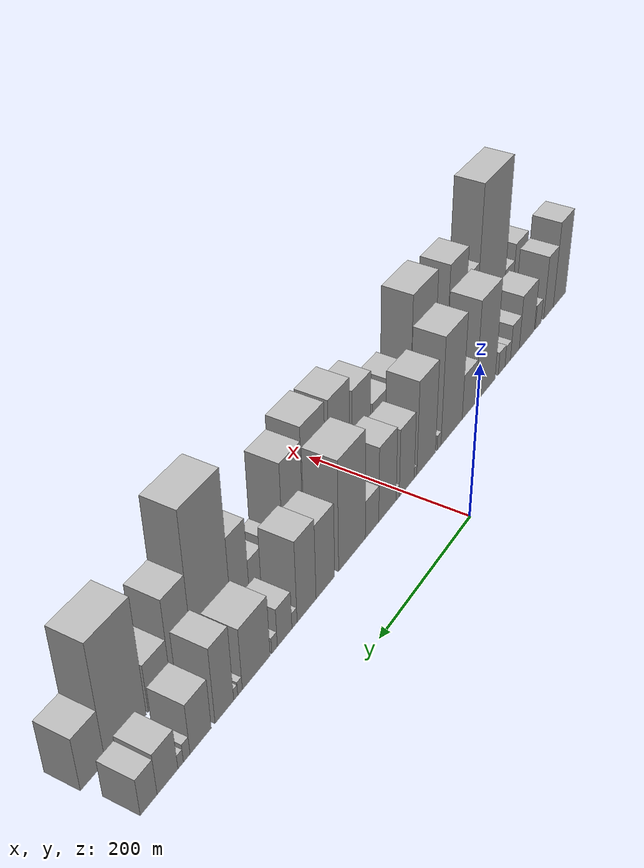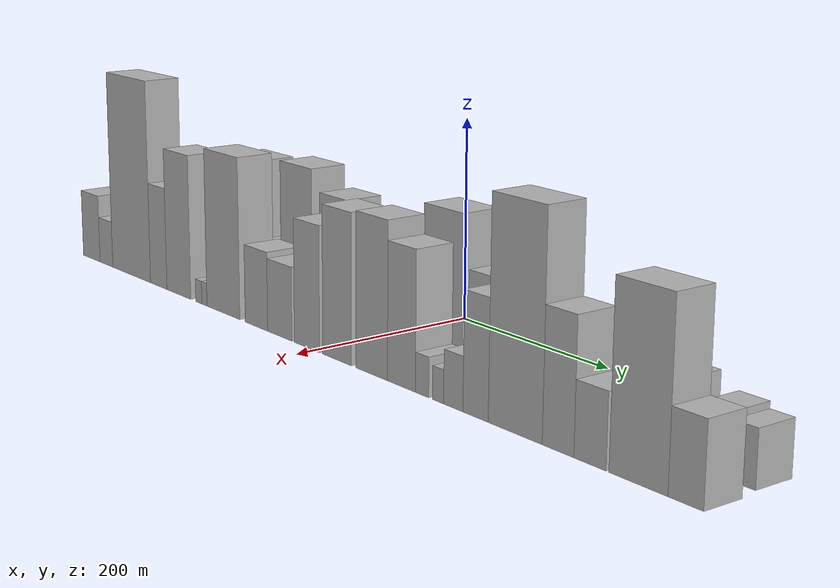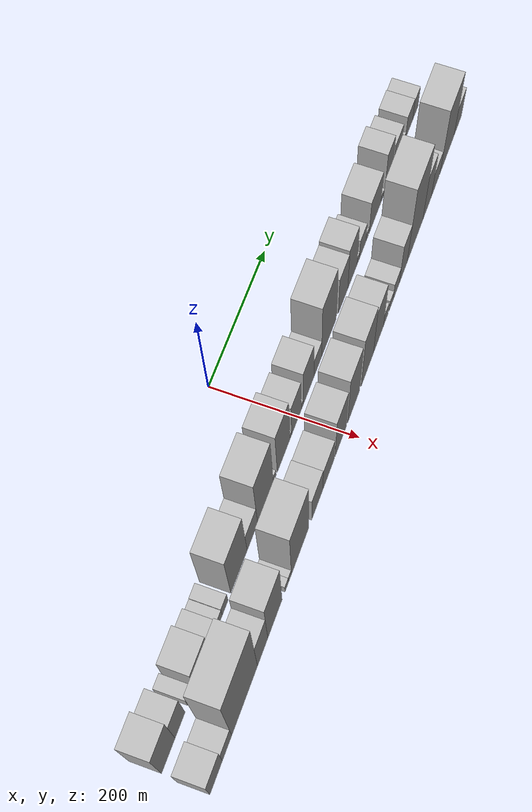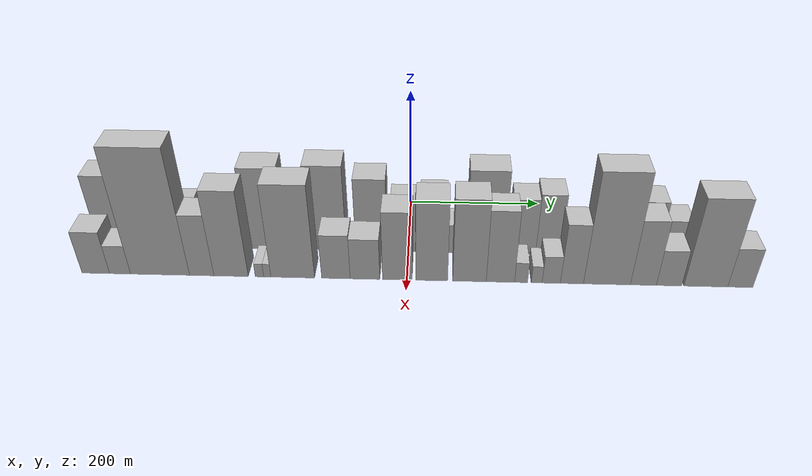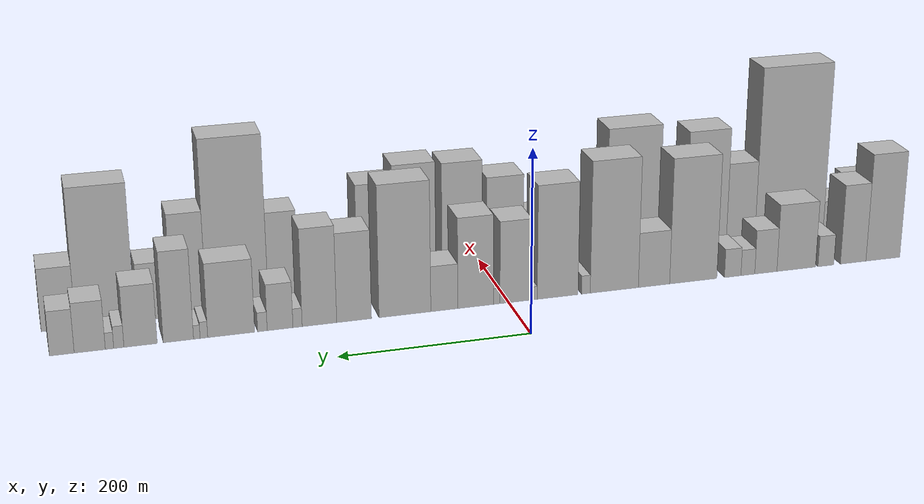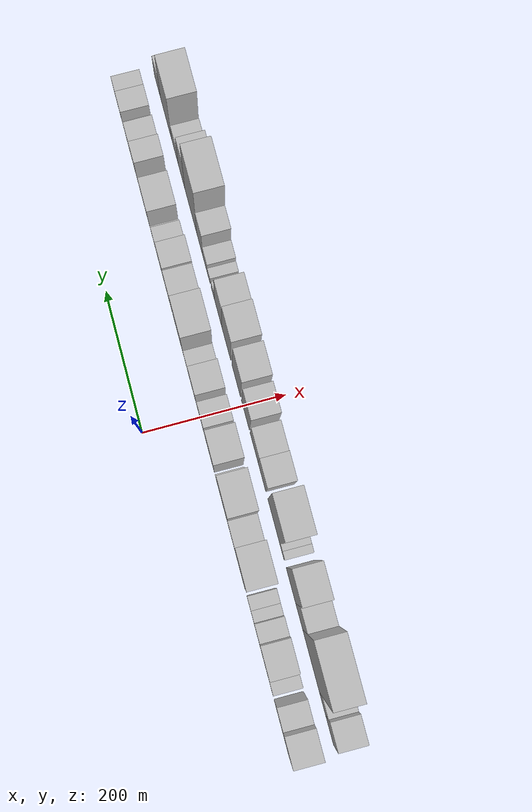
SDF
<sdf version="1.6">
 <world name="default">
  <scene>
   <sky><clouds><speed>12</speed></clouds></sky>
   <ambient>0.4 0.4 0.4 1</ambient>
   <background>0.7 0.7 0.7 1</background>
   <shadows>1</shadows>
  </scene>
  <gravity>0 0 -9.8066</gravity>
  <magnetic_field>6e-06 2.3e-05 -4.2e-05</magnetic_field>
  <physics default="0" name="default_physics" type="ode">
   <ode>
    <solver>
     <type>quick</type>
     <iters>10</iters>
     <sor>1.0</sor>
     <use_dynamic_moi_rescaling>0</use_dynamic_moi_rescaling>
    </solver>
    <constraints>
     <cfm>0</cfm>
     <erp>0.2</erp>
     <contact_max_correcting_vel>100</contact_max_correcting_vel>
     <contact_surface_layer>0.001</contact_surface_layer>
    </constraints>
   </ode>
   <max_step_size>0.004</max_step_size>
   <real_time_factor>1</real_time_factor>
   <real_time_update_rate>250</real_time_update_rate>
  </physics>
  <light name="sun" type="directional">
   <pose>0 0 10 0 0 0</pose>
   <diffuse>0.8 0.8 0.8 1</diffuse>
   <specular>0.2 0.2 0.2 1</specular>
   <attenuation>
    <range>1000</range>
    <constant>0.9</constant>
    <linear>0.01</linear>
    <quadratic>0.001</quadratic>
   </attenuation>
   <direction>-0.5 0.1 -0.9</direction>
  </light>
  <model name="building_1">
   <static>1</static>
   <pose>100.0000 -436.1519 0 0.000000 0.000000 0.000000</pose>
   <link name="link">
    <pose>0 0 63.00 0 0 0</pose>
    <collision name="collision"><geometry><box><size>40.0000 41.6962 126.0000</size></box></geometry></collision>
    <visual name="visual">
     <cast_shadows>0</cast_shadows>
     <geometry><box><size>40.0000 41.6962 126.0000</size></box></geometry>
     <material>
      <script>
       <uri>model://HANNAS_wall/materials/scripts</uri>
       <uri>model://HANNAS_wall/materials/textures</uri>
       <name>vrc/HANNAS_wall</name>
      </script>
     </material>
    </visual>
   </link>
  </model>
  <model name="building_2">
   <static>1</static>
   <pose>100.0000 -399.7004 0 0.000000 0.000000 0.000000</pose>
   <link name="link">
    <pose>0 0 46.50 0 0 0</pose>
    <collision name="collision"><geometry><box><size>40.0000 31.2068 93.0000</size></box></geometry></collision>
    <visual name="visual">
     <cast_shadows>0</cast_shadows>
     <geometry><box><size>40.0000 31.2068 93.0000</size></box></geometry>
     <material>
      <script>
       <uri>model://HANNAS_wall/materials/scripts</uri>
       <uri>model://HANNAS_wall/materials/textures</uri>
       <name>vrc/HANNAS_wall</name>
      </script>
     </material>
    </visual>
   </link>
  </model>
  <model name="building_3">
   <static>1</static>
   <pose>100.0000 -366.5064 0 0.000000 0.000000 0.000000</pose>
   <link name="link">
    <pose>0 0 18.00 0 0 0</pose>
    <collision name="collision"><geometry><box><size>40.0000 19.1812 36.0000</size></box></geometry></collision>
    <visual name="visual">
     <cast_shadows>0</cast_shadows>
     <geometry><box><size>40.0000 19.1812 36.0000</size></box></geometry>
     <material>
      <script>
       <uri>model://HANNAS_wall/materials/scripts</uri>
       <uri>model://HANNAS_wall/materials/textures</uri>
       <name>vrc/HANNAS_wall</name>
      </script>
     </material>
    </visual>
   </link>
  </model>
  <model name="building_4">
   <static>1</static>
   <pose>100.0000 -330.7032 0 0.000000 0.000000 0.000000</pose>
   <link name="link">
    <pose>0 0 39.00 0 0 0</pose>
    <collision name="collision"><geometry><box><size>40.0000 46.4252 78.0000</size></box></geometry></collision>
    <visual name="visual">
     <cast_shadows>0</cast_shadows>
     <geometry><box><size>40.0000 46.4252 78.0000</size></box></geometry>
     <material>
      <script>
       <uri>model://HANNAS_wall/materials/scripts</uri>
       <uri>model://HANNAS_wall/materials/textures</uri>
       <name>vrc/HANNAS_wall</name>
      </script>
     </material>
    </visual>
   </link>
  </model>
  <model name="building_5">
   <static>1</static>
   <pose>100.0000 -294.3100 0 0.000000 0.000000 0.000000</pose>
   <link name="link">
    <pose>0 0 25.50 0 0 0</pose>
    <collision name="collision"><geometry><box><size>40.0000 26.3612 51.0000</size></box></geometry></collision>
    <visual name="visual">
     <cast_shadows>0</cast_shadows>
     <geometry><box><size>40.0000 26.3612 51.0000</size></box></geometry>
     <material>
      <script>
       <uri>model://HANNAS_wall/materials/scripts</uri>
       <uri>model://HANNAS_wall/materials/textures</uri>
       <name>vrc/HANNAS_wall</name>
      </script>
     </material>
    </visual>
   </link>
  </model>
  <model name="building_6">
   <static>1</static>
   <pose>100.0000 -272.9667 0 0.000000 0.000000 0.000000</pose>
   <link name="link">
    <pose>0 0 15.00 0 0 0</pose>
    <collision name="collision"><geometry><box><size>40.0000 16.3254 30.0000</size></box></geometry></collision>
    <visual name="visual">
     <cast_shadows>0</cast_shadows>
     <geometry><box><size>40.0000 16.3254 30.0000</size></box></geometry>
     <material>
      <script>
       <uri>model://HANNAS_wall/materials/scripts</uri>
       <uri>model://HANNAS_wall/materials/textures</uri>
       <name>vrc/HANNAS_wall</name>
      </script>
     </material>
    </visual>
   </link>
  </model>
  <model name="building_7">
   <static>1</static>
   <pose>100.0000 -255.0828 0 0.000000 0.000000 0.000000</pose>
   <link name="link">
    <pose>0 0 16.50 0 0 0</pose>
    <collision name="collision"><geometry><box><size>40.0000 19.4425 33.0000</size></box></geometry></collision>
    <visual name="visual">
     <cast_shadows>0</cast_shadows>
     <geometry><box><size>40.0000 19.4425 33.0000</size></box></geometry>
     <material>
      <script>
       <uri>model://HANNAS_wall/materials/scripts</uri>
       <uri>model://HANNAS_wall/materials/textures</uri>
       <name>vrc/HANNAS_wall</name>
      </script>
     </material>
    </visual>
   </link>
  </model>
  <model name="building_8">
   <static>1</static>
   <pose>100.0000 -208.8802 0 0.000000 0.000000 0.000000</pose>
   <link name="link">
    <pose>0 0 72.00 0 0 0</pose>
    <collision name="collision"><geometry><box><size>40.0000 54.9626 144.0000</size></box></geometry></collision>
    <visual name="visual">
     <cast_shadows>0</cast_shadows>
     <geometry><box><size>40.0000 54.9626 144.0000</size></box></geometry>
     <material>
      <script>
       <uri>model://HANNAS_wall/materials/scripts</uri>
       <uri>model://HANNAS_wall/materials/textures</uri>
       <name>vrc/HANNAS_wall</name>
      </script>
     </material>
    </visual>
   </link>
  </model>
  <model name="building_9">
   <static>1</static>
   <pose>100.0000 -163.3963 0 0.000000 0.000000 0.000000</pose>
   <link name="link">
    <pose>0 0 31.50 0 0 0</pose>
    <collision name="collision"><geometry><box><size>40.0000 36.0052 63.0000</size></box></geometry></collision>
    <visual name="visual">
     <cast_shadows>0</cast_shadows>
     <geometry><box><size>40.0000 36.0052 63.0000</size></box></geometry>
     <material>
      <script>
       <uri>model://HANNAS_wall/materials/scripts</uri>
       <uri>model://HANNAS_wall/materials/textures</uri>
       <name>vrc/HANNAS_wall</name>
      </script>
     </material>
    </visual>
   </link>
  </model>
  <model name="building_10">
   <static>1</static>
   <pose>100.0000 -118.0097 0 0.000000 0.000000 0.000000</pose>
   <link name="link">
    <pose>0 0 75.00 0 0 0</pose>
    <collision name="collision"><geometry><box><size>40.0000 54.7680 150.0000</size></box></geometry></collision>
    <visual name="visual">
     <cast_shadows>0</cast_shadows>
     <geometry><box><size>40.0000 54.7680 150.0000</size></box></geometry>
     <material>
      <script>
       <uri>model://HANNAS_wall/materials/scripts</uri>
       <uri>model://HANNAS_wall/materials/textures</uri>
       <name>vrc/HANNAS_wall</name>
      </script>
     </material>
    </visual>
   </link>
  </model>
  <model name="building_11">
   <static>1</static>
   <pose>100.0000 -85.7282 0 0.000000 0.000000 0.000000</pose>
   <link name="link">
    <pose>0 0 10.50 0 0 0</pose>
    <collision name="collision"><geometry><box><size>40.0000 9.7949 21.0000</size></box></geometry></collision>
    <visual name="visual">
     <cast_shadows>0</cast_shadows>
     <geometry><box><size>40.0000 9.7949 21.0000</size></box></geometry>
     <material>
      <script>
       <uri>model://HANNAS_wall/materials/scripts</uri>
       <uri>model://HANNAS_wall/materials/textures</uri>
       <name>vrc/HANNAS_wall</name>
      </script>
     </material>
    </visual>
   </link>
  </model>
  <model name="building_12">
   <static>1</static>
   <pose>100.0000 -54.0369 0 0.000000 0.000000 0.000000</pose>
   <link name="link">
    <pose>0 0 64.50 0 0 0</pose>
    <collision name="collision"><geometry><box><size>40.0000 45.5877 129.0000</size></box></geometry></collision>
    <visual name="visual">
     <cast_shadows>0</cast_shadows>
     <geometry><box><size>40.0000 45.5877 129.0000</size></box></geometry>
     <material>
      <script>
       <uri>model://HANNAS_wall/materials/scripts</uri>
       <uri>model://HANNAS_wall/materials/textures</uri>
       <name>vrc/HANNAS_wall</name>
      </script>
     </material>
    </visual>
   </link>
  </model>
  <model name="building_13">
   <static>1</static>
   <pose>100.0000 -28.1778 0 0.000000 0.000000 0.000000</pose>
   <link name="link">
    <pose>0 0 7.50 0 0 0</pose>
    <collision name="collision"><geometry><box><size>40.0000 6.1305 15.0000</size></box></geometry></collision>
    <visual name="visual">
     <cast_shadows>0</cast_shadows>
     <geometry><box><size>40.0000 6.1305 15.0000</size></box></geometry>
     <material>
      <script>
       <uri>model://HANNAS_wall/materials/scripts</uri>
       <uri>model://HANNAS_wall/materials/textures</uri>
       <name>vrc/HANNAS_wall</name>
      </script>
     </material>
    </visual>
   </link>
  </model>
  <model name="building_14">
   <static>1</static>
   <pose>100.0000 -7.5698 0 0.000000 0.000000 0.000000</pose>
   <link name="link">
    <pose>0 0 46.50 0 0 0</pose>
    <collision name="collision"><geometry><box><size>40.0000 35.0856 93.0000</size></box></geometry></collision>
    <visual name="visual">
     <cast_shadows>0</cast_shadows>
     <geometry><box><size>40.0000 35.0856 93.0000</size></box></geometry>
     <material>
      <script>
       <uri>model://HANNAS_wall/materials/scripts</uri>
       <uri>model://HANNAS_wall/materials/textures</uri>
       <name>vrc/HANNAS_wall</name>
      </script>
     </material>
    </visual>
   </link>
  </model>
  <model name="building_15">
   <static>1</static>
   <pose>100.0000 13.6052 0 0.000000 0.000000 0.000000</pose>
   <link name="link">
    <pose>0 0 9.00 0 0 0</pose>
    <collision name="collision"><geometry><box><size>40.0000 7.2643 18.0000</size></box></geometry></collision>
    <visual name="visual">
     <cast_shadows>0</cast_shadows>
     <geometry><box><size>40.0000 7.2643 18.0000</size></box></geometry>
     <material>
      <script>
       <uri>model://HANNAS_wall/materials/scripts</uri>
       <uri>model://HANNAS_wall/materials/textures</uri>
       <name>vrc/HANNAS_wall</name>
      </script>
     </material>
    </visual>
   </link>
  </model>
  <model name="building_16">
   <static>1</static>
   <pose>100.0000 36.6464 0 0.000000 0.000000 0.000000</pose>
   <link name="link">
    <pose>0 0 51.00 0 0 0</pose>
    <collision name="collision"><geometry><box><size>40.0000 38.8180 102.0000</size></box></geometry></collision>
    <visual name="visual">
     <cast_shadows>0</cast_shadows>
     <geometry><box><size>40.0000 38.8180 102.0000</size></box></geometry>
     <material>
      <script>
       <uri>model://HANNAS_wall/materials/scripts</uri>
       <uri>model://HANNAS_wall/materials/textures</uri>
       <name>vrc/HANNAS_wall</name>
      </script>
     </material>
    </visual>
   </link>
  </model>
  <model name="building_17">
   <static>1</static>
   <pose>100.0000 70.6709 0 0.000000 0.000000 0.000000</pose>
   <link name="link">
    <pose>0 0 25.50 0 0 0</pose>
    <collision name="collision"><geometry><box><size>40.0000 29.2312 51.0000</size></box></geometry></collision>
    <visual name="visual">
     <cast_shadows>0</cast_shadows>
     <geometry><box><size>40.0000 29.2312 51.0000</size></box></geometry>
     <material>
      <script>
       <uri>model://HANNAS_wall/materials/scripts</uri>
       <uri>model://HANNAS_wall/materials/textures</uri>
       <name>vrc/HANNAS_wall</name>
      </script>
     </material>
    </visual>
   </link>
  </model>
  <model name="building_18">
   <static>1</static>
   <pose>100.0000 113.0090 0 0.000000 0.000000 0.000000</pose>
   <link name="link">
    <pose>0 0 73.50 0 0 0</pose>
    <collision name="collision"><geometry><box><size>40.0000 55.4450 147.0000</size></box></geometry></collision>
    <visual name="visual">
     <cast_shadows>0</cast_shadows>
     <geometry><box><size>40.0000 55.4450 147.0000</size></box></geometry>
     <material>
      <script>
       <uri>model://HANNAS_wall/materials/scripts</uri>
       <uri>model://HANNAS_wall/materials/textures</uri>
       <name>vrc/HANNAS_wall</name>
      </script>
     </material>
    </visual>
   </link>
  </model>
  <model name="building_19">
   <static>1</static>
   <pose>100.0000 167.0917 0 0.000000 0.000000 0.000000</pose>
   <link name="link">
    <pose>0 0 49.50 0 0 0</pose>
    <collision name="collision"><geometry><box><size>40.0000 36.7203 99.0000</size></box></geometry></collision>
    <visual name="visual">
     <cast_shadows>0</cast_shadows>
     <geometry><box><size>40.0000 36.7203 99.0000</size></box></geometry>
     <material>
      <script>
       <uri>model://HANNAS_wall/materials/scripts</uri>
       <uri>model://HANNAS_wall/materials/textures</uri>
       <name>vrc/HANNAS_wall</name>
      </script>
     </material>
    </visual>
   </link>
  </model>
  <model name="building_20">
   <static>1</static>
   <pose>100.0000 203.5088 0 0.000000 0.000000 0.000000</pose>
   <link name="link">
    <pose>0 0 54.00 0 0 0</pose>
    <collision name="collision"><geometry><box><size>40.0000 36.1139 108.0000</size></box></geometry></collision>
    <visual name="visual">
     <cast_shadows>0</cast_shadows>
     <geometry><box><size>40.0000 36.1139 108.0000</size></box></geometry>
     <material>
      <script>
       <uri>model://HANNAS_wall/materials/scripts</uri>
       <uri>model://HANNAS_wall/materials/textures</uri>
       <name>vrc/HANNAS_wall</name>
      </script>
     </material>
    </visual>
   </link>
  </model>
  <model name="building_21">
   <static>1</static>
   <pose>100.0000 226.3433 0 0.000000 0.000000 0.000000</pose>
   <link name="link">
    <pose>0 0 10.50 0 0 0</pose>
    <collision name="collision"><geometry><box><size>40.0000 9.5550 21.0000</size></box></geometry></collision>
    <visual name="visual">
     <cast_shadows>0</cast_shadows>
     <geometry><box><size>40.0000 9.5550 21.0000</size></box></geometry>
     <material>
      <script>
       <uri>model://HANNAS_wall/materials/scripts</uri>
       <uri>model://HANNAS_wall/materials/textures</uri>
       <name>vrc/HANNAS_wall</name>
      </script>
     </material>
    </visual>
   </link>
  </model>
  <model name="building_22">
   <static>1</static>
   <pose>100.0000 244.4380 0 0.000000 0.000000 0.000000</pose>
   <link name="link">
    <pose>0 0 25.50 0 0 0</pose>
    <collision name="collision"><geometry><box><size>40.0000 26.6344 51.0000</size></box></geometry></collision>
    <visual name="visual">
     <cast_shadows>0</cast_shadows>
     <geometry><box><size>40.0000 26.6344 51.0000</size></box></geometry>
     <material>
      <script>
       <uri>model://HANNAS_wall/materials/scripts</uri>
       <uri>model://HANNAS_wall/materials/textures</uri>
       <name>vrc/HANNAS_wall</name>
      </script>
     </material>
    </visual>
   </link>
  </model>
  <model name="building_23">
   <static>1</static>
   <pose>100.0000 262.6587 0 0.000000 0.000000 0.000000</pose>
   <link name="link">
    <pose>0 0 10.50 0 0 0</pose>
    <collision name="collision"><geometry><box><size>40.0000 9.8070 21.0000</size></box></geometry></collision>
    <visual name="visual">
     <cast_shadows>0</cast_shadows>
     <geometry><box><size>40.0000 9.8070 21.0000</size></box></geometry>
     <material>
      <script>
       <uri>model://HANNAS_wall/materials/scripts</uri>
       <uri>model://HANNAS_wall/materials/textures</uri>
       <name>vrc/HANNAS_wall</name>
      </script>
     </material>
    </visual>
   </link>
  </model>
  <model name="building_24">
   <static>1</static>
   <pose>100.0000 294.5221 0 0.000000 0.000000 0.000000</pose>
   <link name="link">
    <pose>0 0 40.50 0 0 0</pose>
    <collision name="collision"><geometry><box><size>40.0000 47.9198 81.0000</size></box></geometry></collision>
    <visual name="visual">
     <cast_shadows>0</cast_shadows>
     <geometry><box><size>40.0000 47.9198 81.0000</size></box></geometry>
     <material>
      <script>
       <uri>model://HANNAS_wall/materials/scripts</uri>
       <uri>model://HANNAS_wall/materials/textures</uri>
       <name>vrc/HANNAS_wall</name>
      </script>
     </material>
    </visual>
   </link>
  </model>
  <model name="building_25">
   <static>1</static>
   <pose>100.0000 322.3379 0 0.000000 0.000000 0.000000</pose>
   <link name="link">
    <pose>0 0 9.00 0 0 0</pose>
    <collision name="collision"><geometry><box><size>40.0000 7.7118 18.0000</size></box></geometry></collision>
    <visual name="visual">
     <cast_shadows>0</cast_shadows>
     <geometry><box><size>40.0000 7.7118 18.0000</size></box></geometry>
     <material>
      <script>
       <uri>model://HANNAS_wall/materials/scripts</uri>
       <uri>model://HANNAS_wall/materials/textures</uri>
       <name>vrc/HANNAS_wall</name>
      </script>
     </material>
    </visual>
   </link>
  </model>
  <model name="building_26">
   <static>1</static>
   <pose>100.0000 329.4897 0 0.000000 0.000000 0.000000</pose>
   <link name="link">
    <pose>0 0 7.50 0 0 0</pose>
    <collision name="collision"><geometry><box><size>40.0000 6.5919 15.0000</size></box></geometry></collision>
    <visual name="visual">
     <cast_shadows>0</cast_shadows>
     <geometry><box><size>40.0000 6.5919 15.0000</size></box></geometry>
     <material>
      <script>
       <uri>model://HANNAS_wall/materials/scripts</uri>
       <uri>model://HANNAS_wall/materials/textures</uri>
       <name>vrc/HANNAS_wall</name>
      </script>
     </material>
    </visual>
   </link>
  </model>
  <model name="building_27">
   <static>1</static>
   <pose>100.0000 347.9897 0 0.000000 0.000000 0.000000</pose>
   <link name="link">
    <pose>0 0 49.50 0 0 0</pose>
    <collision name="collision"><geometry><box><size>40.0000 30.4081 99.0000</size></box></geometry></collision>
    <visual name="visual">
     <cast_shadows>0</cast_shadows>
     <geometry><box><size>40.0000 30.4081 99.0000</size></box></geometry>
     <material>
      <script>
       <uri>model://HANNAS_wall/materials/scripts</uri>
       <uri>model://HANNAS_wall/materials/textures</uri>
       <name>vrc/HANNAS_wall</name>
      </script>
     </material>
    </visual>
   </link>
  </model>
  <model name="building_28">
   <static>1</static>
   <pose>100.0000 385.7525 0 0.000000 0.000000 0.000000</pose>
   <link name="link">
    <pose>0 0 33.00 0 0 0</pose>
    <collision name="collision"><geometry><box><size>40.0000 33.1177 66.0000</size></box></geometry></collision>
    <visual name="visual">
     <cast_shadows>0</cast_shadows>
     <geometry><box><size>40.0000 33.1177 66.0000</size></box></geometry>
     <material>
      <script>
       <uri>model://HANNAS_wall/materials/scripts</uri>
       <uri>model://HANNAS_wall/materials/textures</uri>
       <name>vrc/HANNAS_wall</name>
      </script>
     </material>
    </visual>
   </link>
  </model>
  <model name="building_29">
   <static>1</static>
   <pose>100.0000 407.3562 0 0.000000 0.000000 0.000000</pose>
   <link name="link">
    <pose>0 0 12.00 0 0 0</pose>
    <collision name="collision"><geometry><box><size>40.0000 10.0896 24.0000</size></box></geometry></collision>
    <visual name="visual">
     <cast_shadows>0</cast_shadows>
     <geometry><box><size>40.0000 10.0896 24.0000</size></box></geometry>
     <material>
      <script>
       <uri>model://HANNAS_wall/materials/scripts</uri>
       <uri>model://HANNAS_wall/materials/textures</uri>
       <name>vrc/HANNAS_wall</name>
      </script>
     </material>
    </visual>
   </link>
  </model>
  <model name="building_30">
   <static>1</static>
   <pose>100.0000 416.5464 0 0.000000 0.000000 0.000000</pose>
   <link name="link">
    <pose>0 0 9.00 0 0 0</pose>
    <collision name="collision"><geometry><box><size>40.0000 8.2909 18.0000</size></box></geometry></collision>
    <visual name="visual">
     <cast_shadows>0</cast_shadows>
     <geometry><box><size>40.0000 8.2909 18.0000</size></box></geometry>
     <material>
      <script>
       <uri>model://HANNAS_wall/materials/scripts</uri>
       <uri>model://HANNAS_wall/materials/textures</uri>
       <name>vrc/HANNAS_wall</name>
      </script>
     </material>
    </visual>
   </link>
  </model>
  <model name="building_31">
   <static>1</static>
   <pose>100.0000 435.9481 0 0.000000 0.000000 0.000000</pose>
   <link name="link">
    <pose>0 0 27.00 0 0 0</pose>
    <collision name="collision"><geometry><box><size>40.0000 30.5125 54.0000</size></box></geometry></collision>
    <visual name="visual">
     <cast_shadows>0</cast_shadows>
     <geometry><box><size>40.0000 30.5125 54.0000</size></box></geometry>
     <material>
      <script>
       <uri>model://HANNAS_wall/materials/scripts</uri>
       <uri>model://HANNAS_wall/materials/textures</uri>
       <name>vrc/HANNAS_wall</name>
      </script>
     </material>
    </visual>
   </link>
  </model>
  <model name="building_32">
   <static>1</static>
   <pose>100.0000 463.2754 0 0.000000 0.000000 0.000000</pose>
   <link name="link">
    <pose>0 0 24.00 0 0 0</pose>
    <collision name="collision"><geometry><box><size>40.0000 24.1422 48.0000</size></box></geometry></collision>
    <visual name="visual">
     <cast_shadows>0</cast_shadows>
     <geometry><box><size>40.0000 24.1422 48.0000</size></box></geometry>
     <material>
      <script>
       <uri>model://HANNAS_wall/materials/scripts</uri>
       <uri>model://HANNAS_wall/materials/textures</uri>
       <name>vrc/HANNAS_wall</name>
      </script>
     </material>
    </visual>
   </link>
  </model>
  <model name="building_33">
   <static>1</static>
   <pose>160.0000 -440.2512 0 0.000000 0.000000 0.000000</pose>
   <link name="link">
    <pose>0 0 37.50 0 0 0</pose>
    <collision name="collision"><geometry><box><size>40.0000 39.4976 75.0000</size></box></geometry></collision>
    <visual name="visual">
     <cast_shadows>0</cast_shadows>
     <geometry><box><size>40.0000 39.4976 75.0000</size></box></geometry>
     <material>
      <script>
       <uri>model://HANNAS_wall/materials/scripts</uri>
       <uri>model://HANNAS_wall/materials/textures</uri>
       <name>vrc/HANNAS_wall</name>
      </script>
     </material>
    </visual>
   </link>
  </model>
  <model name="building_34">
   <static>1</static>
   <pose>160.0000 -405.5684 0 0.000000 0.000000 0.000000</pose>
   <link name="link">
    <pose>0 0 25.50 0 0 0</pose>
    <collision name="collision"><geometry><box><size>40.0000 29.8681 51.0000</size></box></geometry></collision>
    <visual name="visual">
     <cast_shadows>0</cast_shadows>
     <geometry><box><size>40.0000 29.8681 51.0000</size></box></geometry>
     <material>
      <script>
       <uri>model://HANNAS_wall/materials/scripts</uri>
       <uri>model://HANNAS_wall/materials/textures</uri>
       <name>vrc/HANNAS_wall</name>
      </script>
     </material>
    </visual>
   </link>
  </model>
  <model name="building_35">
   <static>1</static>
   <pose>160.0000 -348.5748 0 0.000000 0.000000 0.000000</pose>
   <link name="link">
    <pose>0 0 108.00 0 0 0</pose>
    <collision name="collision"><geometry><box><size>40.0000 84.1191 216.0000</size></box></geometry></collision>
    <visual name="visual">
     <cast_shadows>0</cast_shadows>
     <geometry><box><size>40.0000 84.1191 216.0000</size></box></geometry>
     <material>
      <script>
       <uri>model://HANNAS_wall/materials/scripts</uri>
       <uri>model://HANNAS_wall/materials/textures</uri>
       <name>vrc/HANNAS_wall</name>
      </script>
     </material>
    </visual>
   </link>
  </model>
  <model name="building_36">
   <static>1</static>
   <pose>160.0000 -289.1728 0 0.000000 0.000000 0.000000</pose>
   <link name="link">
    <pose>0 0 54.00 0 0 0</pose>
    <collision name="collision"><geometry><box><size>40.0000 34.6849 108.0000</size></box></geometry></collision>
    <visual name="visual">
     <cast_shadows>0</cast_shadows>
     <geometry><box><size>40.0000 34.6849 108.0000</size></box></geometry>
     <material>
      <script>
       <uri>model://HANNAS_wall/materials/scripts</uri>
       <uri>model://HANNAS_wall/materials/textures</uri>
       <name>vrc/HANNAS_wall</name>
      </script>
     </material>
    </visual>
   </link>
  </model>
  <model name="building_37">
   <static>1</static>
   <pose>160.0000 -247.5439 0 0.000000 0.000000 0.000000</pose>
   <link name="link">
    <pose>0 0 75.00 0 0 0</pose>
    <collision name="collision"><geometry><box><size>40.0000 48.5730 150.0000</size></box></geometry></collision>
    <visual name="visual">
     <cast_shadows>0</cast_shadows>
     <geometry><box><size>40.0000 48.5730 150.0000</size></box></geometry>
     <material>
      <script>
       <uri>model://HANNAS_wall/materials/scripts</uri>
       <uri>model://HANNAS_wall/materials/textures</uri>
       <name>vrc/HANNAS_wall</name>
      </script>
     </material>
    </visual>
   </link>
  </model>
  <model name="building_38">
   <static>1</static>
   <pose>160.0000 -207.2974 0 0.000000 0.000000 0.000000</pose>
   <link name="link">
    <pose>0 0 12.00 0 0 0</pose>
    <collision name="collision"><geometry><box><size>40.0000 11.9199 24.0000</size></box></geometry></collision>
    <visual name="visual">
     <cast_shadows>0</cast_shadows>
     <geometry><box><size>40.0000 11.9199 24.0000</size></box></geometry>
     <material>
      <script>
       <uri>model://HANNAS_wall/materials/scripts</uri>
       <uri>model://HANNAS_wall/materials/textures</uri>
       <name>vrc/HANNAS_wall</name>
      </script>
     </material>
    </visual>
   </link>
  </model>
  <model name="building_39">
   <static>1</static>
   <pose>160.0000 -196.3021 0 0.000000 0.000000 0.000000</pose>
   <link name="link">
    <pose>0 0 12.00 0 0 0</pose>
    <collision name="collision"><geometry><box><size>40.0000 10.0706 24.0000</size></box></geometry></collision>
    <visual name="visual">
     <cast_shadows>0</cast_shadows>
     <geometry><box><size>40.0000 10.0706 24.0000</size></box></geometry>
     <material>
      <script>
       <uri>model://HANNAS_wall/materials/scripts</uri>
       <uri>model://HANNAS_wall/materials/textures</uri>
       <name>vrc/HANNAS_wall</name>
      </script>
     </material>
    </visual>
   </link>
  </model>
  <model name="building_40">
   <static>1</static>
   <pose>160.0000 -160.3515 0 0.000000 0.000000 0.000000</pose>
   <link name="link">
    <pose>0 0 81.00 0 0 0</pose>
    <collision name="collision"><geometry><box><size>40.0000 61.8307 162.0000</size></box></geometry></collision>
    <visual name="visual">
     <cast_shadows>0</cast_shadows>
     <geometry><box><size>40.0000 61.8307 162.0000</size></box></geometry>
     <material>
      <script>
       <uri>model://HANNAS_wall/materials/scripts</uri>
       <uri>model://HANNAS_wall/materials/textures</uri>
       <name>vrc/HANNAS_wall</name>
      </script>
     </material>
    </visual>
   </link>
  </model>
  <model name="building_41">
   <static>1</static>
   <pose>160.0000 -99.3836 0 0.000000 0.000000 0.000000</pose>
   <link name="link">
    <pose>0 0 39.00 0 0 0</pose>
    <collision name="collision"><geometry><box><size>40.0000 40.1050 78.0000</size></box></geometry></collision>
    <visual name="visual">
     <cast_shadows>0</cast_shadows>
     <geometry><box><size>40.0000 40.1050 78.0000</size></box></geometry>
     <material>
      <script>
       <uri>model://HANNAS_wall/materials/scripts</uri>
       <uri>model://HANNAS_wall/materials/textures</uri>
       <name>vrc/HANNAS_wall</name>
      </script>
     </material>
    </visual>
   </link>
  </model>
  <model name="building_42">
   <static>1</static>
   <pose>160.0000 -58.5366 0 0.000000 0.000000 0.000000</pose>
   <link name="link">
    <pose>0 0 36.00 0 0 0</pose>
    <collision name="collision"><geometry><box><size>40.0000 41.5890 72.0000</size></box></geometry></collision>
    <visual name="visual">
     <cast_shadows>0</cast_shadows>
     <geometry><box><size>40.0000 41.5890 72.0000</size></box></geometry>
     <material>
      <script>
       <uri>model://HANNAS_wall/materials/scripts</uri>
       <uri>model://HANNAS_wall/materials/textures</uri>
       <name>vrc/HANNAS_wall</name>
      </script>
     </material>
    </visual>
   </link>
  </model>
  <model name="building_43">
   <static>1</static>
   <pose>160.0000 -13.0442 0 0.000000 0.000000 0.000000</pose>
   <link name="link">
    <pose>0 0 60.00 0 0 0</pose>
    <collision name="collision"><geometry><box><size>40.0000 41.3958 120.0000</size></box></geometry></collision>
    <visual name="visual">
     <cast_shadows>0</cast_shadows>
     <geometry><box><size>40.0000 41.3958 120.0000</size></box></geometry>
     <material>
      <script>
       <uri>model://HANNAS_wall/materials/scripts</uri>
       <uri>model://HANNAS_wall/materials/textures</uri>
       <name>vrc/HANNAS_wall</name>
      </script>
     </material>
    </visual>
   </link>
  </model>
  <model name="building_44">
   <static>1</static>
   <pose>160.0000 35.0524 0 0.000000 0.000000 0.000000</pose>
   <link name="link">
    <pose>0 0 70.50 0 0 0</pose>
    <collision name="collision"><geometry><box><size>40.0000 44.7973 141.0000</size></box></geometry></collision>
    <visual name="visual">
     <cast_shadows>0</cast_shadows>
     <geometry><box><size>40.0000 44.7973 141.0000</size></box></geometry>
     <material>
      <script>
       <uri>model://HANNAS_wall/materials/scripts</uri>
       <uri>model://HANNAS_wall/materials/textures</uri>
       <name>vrc/HANNAS_wall</name>
      </script>
     </material>
    </visual>
   </link>
  </model>
  <model name="building_45">
   <static>1</static>
   <pose>160.0000 87.8977 0 0.000000 0.000000 0.000000</pose>
   <link name="link">
    <pose>0 0 72.00 0 0 0</pose>
    <collision name="collision"><geometry><box><size>40.0000 46.8934 144.0000</size></box></geometry></collision>
    <visual name="visual">
     <cast_shadows>0</cast_shadows>
     <geometry><box><size>40.0000 46.8934 144.0000</size></box></geometry>
     <material>
      <script>
       <uri>model://HANNAS_wall/materials/scripts</uri>
       <uri>model://HANNAS_wall/materials/textures</uri>
       <name>vrc/HANNAS_wall</name>
      </script>
     </material>
    </visual>
   </link>
  </model>
  <model name="building_46">
   <static>1</static>
   <pose>160.0000 131.0804 0 0.000000 0.000000 0.000000</pose>
   <link name="link">
    <pose>0 0 63.00 0 0 0</pose>
    <collision name="collision"><geometry><box><size>40.0000 39.4721 126.0000</size></box></geometry></collision>
    <visual name="visual">
     <cast_shadows>0</cast_shadows>
     <geometry><box><size>40.0000 39.4721 126.0000</size></box></geometry>
     <material>
      <script>
       <uri>model://HANNAS_wall/materials/scripts</uri>
       <uri>model://HANNAS_wall/materials/textures</uri>
       <name>vrc/HANNAS_wall</name>
      </script>
     </material>
    </visual>
   </link>
  </model>
  <model name="building_47">
   <static>1</static>
   <pose>160.0000 159.9213 0 0.000000 0.000000 0.000000</pose>
   <link name="link">
    <pose>0 0 18.00 0 0 0</pose>
    <collision name="collision"><geometry><box><size>40.0000 18.2095 36.0000</size></box></geometry></collision>
    <visual name="visual">
     <cast_shadows>0</cast_shadows>
     <geometry><box><size>40.0000 18.2095 36.0000</size></box></geometry>
     <material>
      <script>
       <uri>model://HANNAS_wall/materials/scripts</uri>
       <uri>model://HANNAS_wall/materials/textures</uri>
       <name>vrc/HANNAS_wall</name>
      </script>
     </material>
    </visual>
   </link>
  </model>
  <model name="building_48">
   <static>1</static>
   <pose>160.0000 181.5531 0 0.000000 0.000000 0.000000</pose>
   <link name="link">
    <pose>0 0 15.00 0 0 0</pose>
    <collision name="collision"><geometry><box><size>40.0000 15.0543 30.0000</size></box></geometry></collision>
    <visual name="visual">
     <cast_shadows>0</cast_shadows>
     <geometry><box><size>40.0000 15.0543 30.0000</size></box></geometry>
     <material>
      <script>
       <uri>model://HANNAS_wall/materials/scripts</uri>
       <uri>model://HANNAS_wall/materials/textures</uri>
       <name>vrc/HANNAS_wall</name>
      </script>
     </material>
    </visual>
   </link>
  </model>
  <model name="building_49">
   <static>1</static>
   <pose>160.0000 201.7491 0 0.000000 0.000000 0.000000</pose>
   <link name="link">
    <pose>0 0 24.00 0 0 0</pose>
    <collision name="collision"><geometry><box><size>40.0000 25.3377 48.0000</size></box></geometry></collision>
    <visual name="visual">
     <cast_shadows>0</cast_shadows>
     <geometry><box><size>40.0000 25.3377 48.0000</size></box></geometry>
     <material>
      <script>
       <uri>model://HANNAS_wall/materials/scripts</uri>
       <uri>model://HANNAS_wall/materials/textures</uri>
       <name>vrc/HANNAS_wall</name>
      </script>
     </material>
    </visual>
   </link>
  </model>
  <model name="building_50">
   <static>1</static>
   <pose>160.0000 230.4884 0 0.000000 0.000000 0.000000</pose>
   <link name="link">
    <pose>0 0 52.50 0 0 0</pose>
    <collision name="collision"><geometry><box><size>40.0000 32.1409 105.0000</size></box></geometry></collision>
    <visual name="visual">
     <cast_shadows>0</cast_shadows>
     <geometry><box><size>40.0000 32.1409 105.0000</size></box></geometry>
     <material>
      <script>
       <uri>model://HANNAS_wall/materials/scripts</uri>
       <uri>model://HANNAS_wall/materials/textures</uri>
       <name>vrc/HANNAS_wall</name>
      </script>
     </material>
    </visual>
   </link>
  </model>
  <model name="building_51">
   <static>1</static>
   <pose>160.0000 279.0515 0 0.000000 0.000000 0.000000</pose>
   <link name="link">
    <pose>0 0 96.00 0 0 0</pose>
    <collision name="collision"><geometry><box><size>40.0000 64.9853 192.0000</size></box></geometry></collision>
    <visual name="visual">
     <cast_shadows>0</cast_shadows>
     <geometry><box><size>40.0000 64.9853 192.0000</size></box></geometry>
     <material>
      <script>
       <uri>model://HANNAS_wall/materials/scripts</uri>
       <uri>model://HANNAS_wall/materials/textures</uri>
       <name>vrc/HANNAS_wall</name>
      </script>
     </material>
    </visual>
   </link>
  </model>
  <model name="building_52">
   <static>1</static>
   <pose>160.0000 329.4946 0 0.000000 0.000000 0.000000</pose>
   <link name="link">
    <pose>0 0 57.00 0 0 0</pose>
    <collision name="collision"><geometry><box><size>40.0000 35.9009 114.0000</size></box></geometry></collision>
    <visual name="visual">
     <cast_shadows>0</cast_shadows>
     <geometry><box><size>40.0000 35.9009 114.0000</size></box></geometry>
     <material>
      <script>
       <uri>model://HANNAS_wall/materials/scripts</uri>
       <uri>model://HANNAS_wall/materials/textures</uri>
       <name>vrc/HANNAS_wall</name>
      </script>
     </material>
    </visual>
   </link>
  </model>
  <model name="building_53">
   <static>1</static>
   <pose>160.0000 364.9697 0 0.000000 0.000000 0.000000</pose>
   <link name="link">
    <pose>0 0 31.50 0 0 0</pose>
    <collision name="collision"><geometry><box><size>40.0000 35.0493 63.0000</size></box></geometry></collision>
    <visual name="visual">
     <cast_shadows>0</cast_shadows>
     <geometry><box><size>40.0000 35.0493 63.0000</size></box></geometry>
     <material>
      <script>
       <uri>model://HANNAS_wall/materials/scripts</uri>
       <uri>model://HANNAS_wall/materials/textures</uri>
       <name>vrc/HANNAS_wall</name>
      </script>
     </material>
    </visual>
   </link>
  </model>
  <model name="building_54">
   <static>1</static>
   <pose>160.0000 415.6444 0 0.000000 0.000000 0.000000</pose>
   <link name="link">
    <pose>0 0 76.50 0 0 0</pose>
    <collision name="collision"><geometry><box><size>40.0000 60.3001 153.0000</size></box></geometry></collision>
    <visual name="visual">
     <cast_shadows>0</cast_shadows>
     <geometry><box><size>40.0000 60.3001 153.0000</size></box></geometry>
     <material>
      <script>
       <uri>model://HANNAS_wall/materials/scripts</uri>
       <uri>model://HANNAS_wall/materials/textures</uri>
       <name>vrc/HANNAS_wall</name>
      </script>
     </material>
    </visual>
   </link>
  </model>
  <model name="building_55">
   <static>1</static>
   <pose>160.0000 463.0755 0 0.000000 0.000000 0.000000</pose>
   <link name="link">
    <pose>0 0 34.50 0 0 0</pose>
    <collision name="collision"><geometry><box><size>40.0000 34.5620 69.0000</size></box></geometry></collision>
    <visual name="visual">
     <cast_shadows>0</cast_shadows>
     <geometry><box><size>40.0000 34.5620 69.0000</size></box></geometry>
     <material>
      <script>
       <uri>model://HANNAS_wall/materials/scripts</uri>
       <uri>model://HANNAS_wall/materials/textures</uri>
       <name>vrc/HANNAS_wall</name>
      </script>
     </material>
    </visual>
   </link>
  </model>
 </world>
</sdf>
